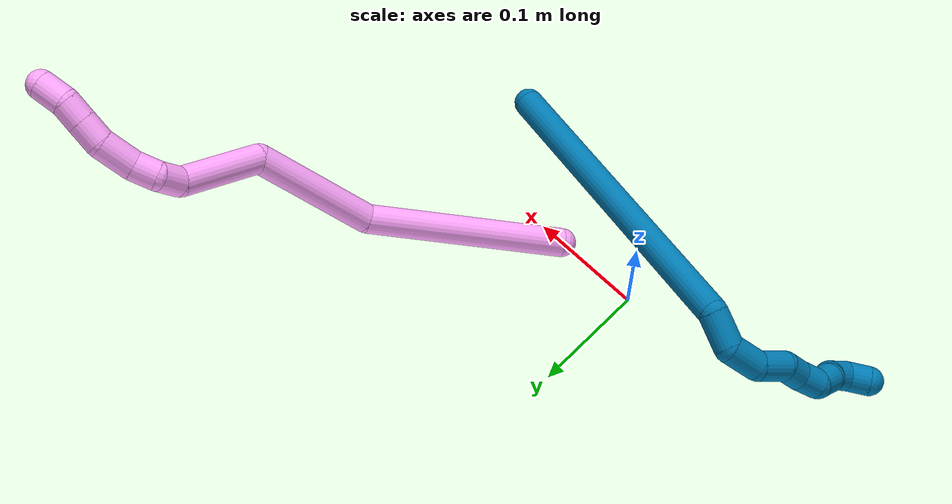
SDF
<sdf version="1.7">
 <world name="default">
  <model name="4">
   <static>0</static>
   <link name="4">
    <collision name="collision-cylinder-e_1_1_4">
     <pose>0.014929 -0.000879 0.08529 0.0103 0.173271 0.000895</pose>
     <geometry><cylinder><radius>0.0125</radius><length>0.173182</length></cylinder></geometry>
     <surface>
      <friction><ode><mu>1.16</mu><mu2>1.16</mu2><slip1>0</slip1><slip2>0</slip2></ode></friction>
      <contact><ode><kp>1e+06</kp><kd>1</kd><max_vel>0</max_vel><min_depth>0.001</min_depth></ode></contact>
     </surface>
    </collision>
    <visual name="visual-cylinder-e_1_1_4">
     <pose>0.014929 -0.000879 0.08529 0.0103 0.173271 0.000895</pose>
     <geometry><cylinder><radius>0.0125</radius><length>0.173182</length></cylinder></geometry>
     <material><ambient>1 0.65098 0.996078 1</ambient></material>
    </visual>
    <collision name="collision-cylinder-e_2_4_5">
     <pose>0.022246 0.012238 0.223022 -0.260782 -0.139322 0.018299</pose>
     <geometry><cylinder><radius>0.0125</radius><length>0.109617</length></cylinder></geometry>
     <surface>
      <friction><ode><mu>1.16</mu><mu2>1.16</mu2><slip1>0</slip1><slip2>0</slip2></ode></friction>
      <contact><ode><kp>1e+06</kp><kd>1</kd><max_vel>0</max_vel><min_depth>0.001</min_depth></ode></contact>
     </surface>
    </collision>
    <visual name="visual-cylinder-e_2_4_5">
     <pose>0.022246 0.012238 0.223022 -0.260782 -0.139322 0.018299</pose>
     <geometry><cylinder><radius>0.0125</radius><length>0.109617</length></cylinder></geometry>
     <material><ambient>1 0.65098 0.996078 1</ambient></material>
    </visual>
    <collision name="collision-cylinder-e_3_5_6">
     <pose>0.036466 0.037392 0.304811 -0.363369 0.607585 -0.115058</pose>
     <geometry><cylinder><radius>0.0125</radius><length>0.076482</length></cylinder></geometry>
     <surface>
      <friction><ode><mu>1.16</mu><mu2>1.16</mu2><slip1>0</slip1><slip2>0</slip2></ode></friction>
      <contact><ode><kp>1e+06</kp><kd>1</kd><max_vel>0</max_vel><min_depth>0.001</min_depth></ode></contact>
     </surface>
    </collision>
    <visual name="visual-cylinder-e_3_5_6">
     <pose>0.036466 0.037392 0.304811 -0.363369 0.607585 -0.115058</pose>
     <geometry><cylinder><radius>0.0125</radius><length>0.076482</length></cylinder></geometry>
     <material><ambient>1 0.65098 0.996078 1</ambient></material>
    </visual>
    <collision name="collision-cylinder-e_4_6_7">
     <pose>0.05995 0.053965 0.343731 -0.514719 0.149159 -0.039326</pose>
     <geometry><cylinder><radius>0.0125</radius><length>0.022243</length></cylinder></geometry>
     <surface>
      <friction><ode><mu>1.16</mu><mu2>1.16</mu2><slip1>0</slip1><slip2>0</slip2></ode></friction>
      <contact><ode><kp>1e+06</kp><kd>1</kd><max_vel>0</max_vel><min_depth>0.001</min_depth></ode></contact>
     </surface>
    </collision>
    <visual name="visual-cylinder-e_4_6_7">
     <pose>0.05995 0.053965 0.343731 -0.514719 0.149159 -0.039326</pose>
     <geometry><cylinder><radius>0.0125</radius><length>0.022243</length></cylinder></geometry>
     <material><ambient>1 0.65098 0.996078 1</ambient></material>
    </visual>
    <collision name="collision-cylinder-e_5_7_8">
     <pose>0.060174 0.058639 0.363685 0.071181 -0.136397 -0.004864</pose>
     <geometry><cylinder><radius>0.0125</radius><length>0.021011</length></cylinder></geometry>
     <surface>
      <friction><ode><mu>1.16</mu><mu2>1.16</mu2><slip1>0</slip1><slip2>0</slip2></ode></friction>
      <contact><ode><kp>1e+06</kp><kd>1</kd><max_vel>0</max_vel><min_depth>0.001</min_depth></ode></contact>
     </surface>
    </collision>
    <visual name="visual-cylinder-e_5_7_8">
     <pose>0.060174 0.058639 0.363685 0.071181 -0.136397 -0.004864</pose>
     <geometry><cylinder><radius>0.0125</radius><length>0.021011</length></cylinder></geometry>
     <material><ambient>1 0.65098 0.996078 1</ambient></material>
    </visual>
    <collision name="collision-cylinder-e_6_8_9">
     <pose>0.05455 0.060371 0.38887 -0.165487 -0.2726 0.022748</pose>
     <geometry><cylinder><radius>0.0125</radius><length>0.031166</length></cylinder></geometry>
     <surface>
      <friction><ode><mu>1.16</mu><mu2>1.16</mu2><slip1>0</slip1><slip2>0</slip2></ode></friction>
      <contact><ode><kp>1e+06</kp><kd>1</kd><max_vel>0</max_vel><min_depth>0.001</min_depth></ode></contact>
     </surface>
    </collision>
    <visual name="visual-cylinder-e_6_8_9">
     <pose>0.05455 0.060371 0.38887 -0.165487 -0.2726 0.022748</pose>
     <geometry><cylinder><radius>0.0125</radius><length>0.031166</length></cylinder></geometry>
     <material><ambient>1 0.65098 0.996078 1</ambient></material>
    </visual>
    <collision name="collision-cylinder-e_7_9_10">
     <pose>0.044461 0.063338 0.412811 -0.054105 -0.572116 0.015917</pose>
     <geometry><cylinder><radius>0.0125</radius><length>0.021771</length></cylinder></geometry>
     <surface>
      <friction><ode><mu>1.16</mu><mu2>1.16</mu2><slip1>0</slip1><slip2>0</slip2></ode></friction>
      <contact><ode><kp>1e+06</kp><kd>1</kd><max_vel>0</max_vel><min_depth>0.001</min_depth></ode></contact>
     </surface>
    </collision>
    <visual name="visual-cylinder-e_7_9_10">
     <pose>0.044461 0.063338 0.412811 -0.054105 -0.572116 0.015917</pose>
     <geometry><cylinder><radius>0.0125</radius><length>0.021771</length></cylinder></geometry>
     <material><ambient>1 0.65098 0.996078 1</ambient></material>
    </visual>
    <collision name="collision-cylinder-e_8_10_11">
     <pose>0.03305 0.064245 0.430365 -0.048943 -0.579759 0.014602</pose>
     <geometry><cylinder><radius>0.0125</radius><length>0.020144</length></cylinder></geometry>
     <surface>
      <friction><ode><mu>1.16</mu><mu2>1.16</mu2><slip1>0</slip1><slip2>0</slip2></ode></friction>
      <contact><ode><kp>1e+06</kp><kd>1</kd><max_vel>0</max_vel><min_depth>0.001</min_depth></ode></contact>
     </surface>
    </collision>
    <visual name="visual-cylinder-e_8_10_11">
     <pose>0.03305 0.064245 0.430365 -0.048943 -0.579759 0.014602</pose>
     <geometry><cylinder><radius>0.0125</radius><length>0.020144</length></cylinder></geometry>
     <material><ambient>1 0.65098 0.996078 1</ambient></material>
    </visual>
    <collision name="collision-cylinder-e_9_11_2">
     <pose>0.022718 0.061207 0.449438 0.313111 -0.405919 -0.064945</pose>
     <geometry><cylinder><radius>0.0125</radius><length>0.024384</length></cylinder></geometry>
     <surface>
      <friction><ode><mu>1.16</mu><mu2>1.16</mu2><slip1>0</slip1><slip2>0</slip2></ode></friction>
      <contact><ode><kp>1e+06</kp><kd>1</kd><max_vel>0</max_vel><min_depth>0.001</min_depth></ode></contact>
     </surface>
    </collision>
    <visual name="visual-cylinder-e_9_11_2">
     <pose>0.022718 0.061207 0.449438 0.313111 -0.405919 -0.064945</pose>
     <geometry><cylinder><radius>0.0125</radius><length>0.024384</length></cylinder></geometry>
     <material><ambient>1 0.65098 0.996078 1</ambient></material>
    </visual>
    <collision name="collision-sphere-2">
     <pose>0.017904 0.057757 0.460095 0 -0 0</pose>
     <geometry><sphere><radius>0.0125</radius></sphere></geometry>
     <surface>
      <friction><ode><mu>1.16</mu><mu2>1.16</mu2><slip1>0</slip1><slip2>0</slip2></ode></friction>
      <contact><ode><kp>1e+06</kp><kd>1</kd><max_vel>0</max_vel><min_depth>0.001</min_depth></ode></contact>
     </surface>
    </collision>
    <visual name="visual-sphere-2">
     <pose>0.017904 0.057757 0.460095 0 -0 0</pose>
     <geometry><sphere><radius>0.0125</radius></sphere></geometry>
     <material><ambient>1 0.65098 0.996078 1</ambient></material>
    </visual>
    <collision name="collision-sphere-11">
     <pose>0.027532 0.064658 0.438781 0 -0 0</pose>
     <geometry><sphere><radius>0.0125</radius></sphere></geometry>
     <surface>
      <friction><ode><mu>1.16</mu><mu2>1.16</mu2><slip1>0</slip1><slip2>0</slip2></ode></friction>
      <contact><ode><kp>1e+06</kp><kd>1</kd><max_vel>0</max_vel><min_depth>0.001</min_depth></ode></contact>
     </surface>
    </collision>
    <visual name="visual-sphere-11">
     <pose>0.027532 0.064658 0.438781 0 -0 0</pose>
     <geometry><sphere><radius>0.0125</radius></sphere></geometry>
     <material><ambient>1 0.65098 0.996078 1</ambient></material>
    </visual>
    <collision name="collision-sphere-10">
     <pose>0.038568 0.063833 0.421949 0 -0 0</pose>
     <geometry><sphere><radius>0.0125</radius></sphere></geometry>
     <surface>
      <friction><ode><mu>1.16</mu><mu2>1.16</mu2><slip1>0</slip1><slip2>0</slip2></ode></friction>
      <contact><ode><kp>1e+06</kp><kd>1</kd><max_vel>0</max_vel><min_depth>0.001</min_depth></ode></contact>
     </surface>
    </collision>
    <visual name="visual-sphere-10">
     <pose>0.038568 0.063833 0.421949 0 -0 0</pose>
     <geometry><sphere><radius>0.0125</radius></sphere></geometry>
     <material><ambient>1 0.65098 0.996078 1</ambient></material>
    </visual>
    <collision name="collision-sphere-9">
     <pose>0.050355 0.062843 0.403672 0 -0 0</pose>
     <geometry><sphere><radius>0.0125</radius></sphere></geometry>
     <surface>
      <friction><ode><mu>1.16</mu><mu2>1.16</mu2><slip1>0</slip1><slip2>0</slip2></ode></friction>
      <contact><ode><kp>1e+06</kp><kd>1</kd><max_vel>0</max_vel><min_depth>0.001</min_depth></ode></contact>
     </surface>
    </collision>
    <visual name="visual-sphere-9">
     <pose>0.050355 0.062843 0.403672 0 -0 0</pose>
     <geometry><sphere><radius>0.0125</radius></sphere></geometry>
     <material><ambient>1 0.65098 0.996078 1</ambient></material>
    </visual>
    <collision name="collision-sphere-4">
     <pose>0.029858 -0.001757 0.17058 0 -0 0</pose>
     <geometry><sphere><radius>0.0125</radius></sphere></geometry>
     <surface>
      <friction><ode><mu>1.16</mu><mu2>1.16</mu2><slip1>0</slip1><slip2>0</slip2></ode></friction>
      <contact><ode><kp>1e+06</kp><kd>1</kd><max_vel>0</max_vel><min_depth>0.001</min_depth></ode></contact>
     </surface>
    </collision>
    <visual name="visual-sphere-4">
     <pose>0.029858 -0.001757 0.17058 0 -0 0</pose>
     <geometry><sphere><radius>0.0125</radius></sphere></geometry>
     <material><ambient>1 0.65098 0.996078 1</ambient></material>
    </visual>
    <collision name="collision-sphere-1">
     <geometry><sphere><radius>0.0125</radius></sphere></geometry>
     <surface>
      <friction><ode><mu>1.16</mu><mu2>1.16</mu2><slip1>0</slip1><slip2>0</slip2></ode></friction>
      <contact><ode><kp>1e+06</kp><kd>1</kd><max_vel>0</max_vel><min_depth>0.001</min_depth></ode></contact>
     </surface>
    </collision>
    <visual name="visual-sphere-1">
     <geometry><sphere><radius>0.0125</radius></sphere></geometry>
     <material><ambient>1 0.65098 0.996078 1</ambient></material>
    </visual>
    <collision name="collision-sphere-8">
     <pose>0.058746 0.057899 0.374067 0 -0 0</pose>
     <geometry><sphere><radius>0.0125</radius></sphere></geometry>
     <surface>
      <friction><ode><mu>1.16</mu><mu2>1.16</mu2><slip1>0</slip1><slip2>0</slip2></ode></friction>
      <contact><ode><kp>1e+06</kp><kd>1</kd><max_vel>0</max_vel><min_depth>0.001</min_depth></ode></contact>
     </surface>
    </collision>
    <visual name="visual-sphere-8">
     <pose>0.058746 0.057899 0.374067 0 -0 0</pose>
     <geometry><sphere><radius>0.0125</radius></sphere></geometry>
     <material><ambient>1 0.65098 0.996078 1</ambient></material>
    </visual>
    <collision name="collision-sphere-5">
     <pose>0.014635 0.026232 0.275464 0 -0 0</pose>
     <geometry><sphere><radius>0.0125</radius></sphere></geometry>
     <surface>
      <friction><ode><mu>1.16</mu><mu2>1.16</mu2><slip1>0</slip1><slip2>0</slip2></ode></friction>
      <contact><ode><kp>1e+06</kp><kd>1</kd><max_vel>0</max_vel><min_depth>0.001</min_depth></ode></contact>
     </surface>
    </collision>
    <visual name="visual-sphere-5">
     <pose>0.014635 0.026232 0.275464 0 -0 0</pose>
     <geometry><sphere><radius>0.0125</radius></sphere></geometry>
     <material><ambient>1 0.65098 0.996078 1</ambient></material>
    </visual>
    <collision name="collision-sphere-6">
     <pose>0.058297 0.048551 0.334158 0 -0 0</pose>
     <geometry><sphere><radius>0.0125</radius></sphere></geometry>
     <surface>
      <friction><ode><mu>1.16</mu><mu2>1.16</mu2><slip1>0</slip1><slip2>0</slip2></ode></friction>
      <contact><ode><kp>1e+06</kp><kd>1</kd><max_vel>0</max_vel><min_depth>0.001</min_depth></ode></contact>
     </surface>
    </collision>
    <visual name="visual-sphere-6">
     <pose>0.058297 0.048551 0.334158 0 -0 0</pose>
     <geometry><sphere><radius>0.0125</radius></sphere></geometry>
     <material><ambient>1 0.65098 0.996078 1</ambient></material>
    </visual>
    <collision name="collision-sphere-7">
     <pose>0.061603 0.059379 0.353304 0 -0 0</pose>
     <geometry><sphere><radius>0.0125</radius></sphere></geometry>
     <surface>
      <friction><ode><mu>1.16</mu><mu2>1.16</mu2><slip1>0</slip1><slip2>0</slip2></ode></friction>
      <contact><ode><kp>1e+06</kp><kd>1</kd><max_vel>0</max_vel><min_depth>0.001</min_depth></ode></contact>
     </surface>
    </collision>
    <visual name="visual-sphere-7">
     <pose>0.061603 0.059379 0.353304 0 -0 0</pose>
     <geometry><sphere><radius>0.0125</radius></sphere></geometry>
     <material><ambient>1 0.65098 0.996078 1</ambient></material>
    </visual>
    <inertial>
     <pose>0.028597 0.025057 0.237105 0 -0 0</pose>
     <mass>0.5</mass>
     <inertia>
      <ixx>0.00059</ixx>
      <ixy>0</ixy>
      <ixz>0</ixz>
      <iyy>0.000603</iyy>
      <iyz>0</iyz>
      <izz>-8.1e-05</izz>
     </inertia>
    </inertial>
   </link>
   <pose>0.074911 0.004537 0.011498 1.23255 0.184896 2.10765</pose>
  </model>
  <model name="9">
   <static>0</static>
   <link name="9">
    <collision name="collision-cylinder-e_1_1_4">
     <pose>-0.137055 0.044749 -0.005959 -1.70319 -1.2526 1.38102</pose>
     <geometry><cylinder><radius>0.0125</radius><length>0.288597</length></cylinder></geometry>
     <surface>
      <friction><ode><mu>1.16</mu><mu2>1.16</mu2><slip1>0</slip1><slip2>0</slip2></ode></friction>
      <contact><ode><kp>1e+06</kp><kd>1</kd><max_vel>0</max_vel><min_depth>0.001</min_depth></ode></contact>
     </surface>
    </collision>
    <visual name="visual-cylinder-e_1_1_4">
     <pose>-0.137055 0.044749 -0.005959 -1.70319 -1.2526 1.38102</pose>
     <geometry><cylinder><radius>0.0125</radius><length>0.288597</length></cylinder></geometry>
     <material><ambient>0 0.490196 0.709804 1</ambient></material>
    </visual>
    <collision name="collision-cylinder-e_2_4_5">
     <pose>-0.284097 0.097913 -0.020232 -2.35019 -0.701209 1.43819</pose>
     <geometry><cylinder><radius>0.0125</radius><length>0.030963</length></cylinder></geometry>
     <surface>
      <friction><ode><mu>1.16</mu><mu2>1.16</mu2><slip1>0</slip1><slip2>0</slip2></ode></friction>
      <contact><ode><kp>1e+06</kp><kd>1</kd><max_vel>0</max_vel><min_depth>0.001</min_depth></ode></contact>
     </surface>
    </collision>
    <visual name="visual-cylinder-e_2_4_5">
     <pose>-0.284097 0.097913 -0.020232 -2.35019 -0.701209 1.43819</pose>
     <geometry><cylinder><radius>0.0125</radius><length>0.030963</length></cylinder></geometry>
     <material><ambient>0 0.490196 0.709804 1</ambient></material>
    </visual>
    <collision name="collision-cylinder-e_3_5_6">
     <pose>-0.301227 0.105551 -0.041575 3.08206 -0.500706 -2.90976</pose>
     <geometry><cylinder><radius>0.0125</radius><length>0.029756</length></cylinder></geometry>
     <surface>
      <friction><ode><mu>1.16</mu><mu2>1.16</mu2><slip1>0</slip1><slip2>0</slip2></ode></friction>
      <contact><ode><kp>1e+06</kp><kd>1</kd><max_vel>0</max_vel><min_depth>0.001</min_depth></ode></contact>
     </surface>
    </collision>
    <visual name="visual-cylinder-e_3_5_6">
     <pose>-0.301227 0.105551 -0.041575 3.08206 -0.500706 -2.90976</pose>
     <geometry><cylinder><radius>0.0125</radius><length>0.029756</length></cylinder></geometry>
     <material><ambient>0 0.490196 0.709804 1</ambient></material>
    </visual>
    <collision name="collision-cylinder-e_4_6_7">
     <pose>-0.31151 0.097801 -0.066938 2.62707 -0.218146 -0.788846</pose>
     <geometry><cylinder><radius>0.0125</radius><length>0.029026</length></cylinder></geometry>
     <surface>
      <friction><ode><mu>1.16</mu><mu2>1.16</mu2><slip1>0</slip1><slip2>0</slip2></ode></friction>
      <contact><ode><kp>1e+06</kp><kd>1</kd><max_vel>0</max_vel><min_depth>0.001</min_depth></ode></contact>
     </surface>
    </collision>
    <visual name="visual-cylinder-e_4_6_7">
     <pose>-0.31151 0.097801 -0.066938 2.62707 -0.218146 -0.788846</pose>
     <geometry><cylinder><radius>0.0125</radius><length>0.029026</length></cylinder></geometry>
     <material><ambient>0 0.490196 0.709804 1</ambient></material>
    </visual>
    <collision name="collision-cylinder-e_5_7_8">
     <pose>-0.316081 0.089942 -0.089279 3.05328 -0.141386 -2.02581</pose>
     <geometry><cylinder><radius>0.0125</radius><length>0.020295</length></cylinder></geometry>
     <surface>
      <friction><ode><mu>1.16</mu><mu2>1.16</mu2><slip1>0</slip1><slip2>0</slip2></ode></friction>
      <contact><ode><kp>1e+06</kp><kd>1</kd><max_vel>0</max_vel><min_depth>0.001</min_depth></ode></contact>
     </surface>
    </collision>
    <visual name="visual-cylinder-e_5_7_8">
     <pose>-0.316081 0.089942 -0.089279 3.05328 -0.141386 -2.02581</pose>
     <geometry><cylinder><radius>0.0125</radius><length>0.020295</length></cylinder></geometry>
     <material><ambient>0 0.490196 0.709804 1</ambient></material>
    </visual>
    <collision name="collision-cylinder-e_6_8_9">
     <pose>-0.321762 0.08723 -0.108668 2.94933 -0.418488 -2.2891</pose>
     <geometry><cylinder><radius>0.0125</radius><length>0.020923</length></cylinder></geometry>
     <surface>
      <friction><ode><mu>1.16</mu><mu2>1.16</mu2><slip1>0</slip1><slip2>0</slip2></ode></friction>
      <contact><ode><kp>1e+06</kp><kd>1</kd><max_vel>0</max_vel><min_depth>0.001</min_depth></ode></contact>
     </surface>
    </collision>
    <visual name="visual-cylinder-e_6_8_9">
     <pose>-0.321762 0.08723 -0.108668 2.94933 -0.418488 -2.2891</pose>
     <geometry><cylinder><radius>0.0125</radius><length>0.020923</length></cylinder></geometry>
     <material><ambient>0 0.490196 0.709804 1</ambient></material>
    </visual>
    <collision name="collision-cylinder-e_7_9_10">
     <pose>-0.324602 0.079506 -0.126005 2.50362 0.141593 0.423021</pose>
     <geometry><cylinder><radius>0.0125</radius><length>0.020004</length></cylinder></geometry>
     <surface>
      <friction><ode><mu>1.16</mu><mu2>1.16</mu2><slip1>0</slip1><slip2>0</slip2></ode></friction>
      <contact><ode><kp>1e+06</kp><kd>1</kd><max_vel>0</max_vel><min_depth>0.001</min_depth></ode></contact>
     </surface>
    </collision>
    <visual name="visual-cylinder-e_7_9_10">
     <pose>-0.324602 0.079506 -0.126005 2.50362 0.141593 0.423021</pose>
     <geometry><cylinder><radius>0.0125</radius><length>0.020004</length></cylinder></geometry>
     <material><ambient>0 0.490196 0.709804 1</ambient></material>
    </visual>
    <collision name="collision-cylinder-e_8_10_11">
     <pose>-0.31782 0.071468 -0.142151 2.88595 0.565221 2.30824</pose>
     <geometry><cylinder><radius>0.0125</radius><length>0.020052</length></cylinder></geometry>
     <surface>
      <friction><ode><mu>1.16</mu><mu2>1.16</mu2><slip1>0</slip1><slip2>0</slip2></ode></friction>
      <contact><ode><kp>1e+06</kp><kd>1</kd><max_vel>0</max_vel><min_depth>0.001</min_depth></ode></contact>
     </surface>
    </collision>
    <visual name="visual-cylinder-e_8_10_11">
     <pose>-0.31782 0.071468 -0.142151 2.88595 0.565221 2.30824</pose>
     <geometry><cylinder><radius>0.0125</radius><length>0.020052</length></cylinder></geometry>
     <material><ambient>0 0.490196 0.709804 1</ambient></material>
    </visual>
    <collision name="collision-cylinder-e_9_11_12">
     <pose>-0.313714 0.064993 -0.159295 2.69074 -0.12636 -0.538357</pose>
     <geometry><cylinder><radius>0.0125</radius><length>0.020052</length></cylinder></geometry>
     <surface>
      <friction><ode><mu>1.16</mu><mu2>1.16</mu2><slip1>0</slip1><slip2>0</slip2></ode></friction>
      <contact><ode><kp>1e+06</kp><kd>1</kd><max_vel>0</max_vel><min_depth>0.001</min_depth></ode></contact>
     </surface>
    </collision>
    <visual name="visual-cylinder-e_9_11_12">
     <pose>-0.313714 0.064993 -0.159295 2.69074 -0.12636 -0.538357</pose>
     <geometry><cylinder><radius>0.0125</radius><length>0.020052</length></cylinder></geometry>
     <material><ambient>0 0.490196 0.709804 1</ambient></material>
    </visual>
    <collision name="collision-cylinder-e_10_12_2">
     <pose>-0.322447 0.057077 -0.174141 2.59545 -0.825241 -2.00327</pose>
     <geometry><cylinder><radius>0.0125</radius><length>0.020333</length></cylinder></geometry>
     <surface>
      <friction><ode><mu>1.16</mu><mu2>1.16</mu2><slip1>0</slip1><slip2>0</slip2></ode></friction>
      <contact><ode><kp>1e+06</kp><kd>1</kd><max_vel>0</max_vel><min_depth>0.001</min_depth></ode></contact>
     </surface>
    </collision>
    <visual name="visual-cylinder-e_10_12_2">
     <pose>-0.322447 0.057077 -0.174141 2.59545 -0.825241 -2.00327</pose>
     <geometry><cylinder><radius>0.0125</radius><length>0.020333</length></cylinder></geometry>
     <material><ambient>0 0.490196 0.709804 1</ambient></material>
    </visual>
    <collision name="collision-sphere-2">
     <pose>-0.329916 0.053495 -0.180034 0 -0 0</pose>
     <geometry><sphere><radius>0.0125</radius></sphere></geometry>
     <surface>
      <friction><ode><mu>1.16</mu><mu2>1.16</mu2><slip1>0</slip1><slip2>0</slip2></ode></friction>
      <contact><ode><kp>1e+06</kp><kd>1</kd><max_vel>0</max_vel><min_depth>0.001</min_depth></ode></contact>
     </surface>
    </collision>
    <visual name="visual-sphere-2">
     <pose>-0.329916 0.053495 -0.180034 0 -0 0</pose>
     <geometry><sphere><radius>0.0125</radius></sphere></geometry>
     <material><ambient>0 0.490196 0.709804 1</ambient></material>
    </visual>
    <collision name="collision-sphere-12">
     <pose>-0.314978 0.060659 -0.168247 0 -0 0</pose>
     <geometry><sphere><radius>0.0125</radius></sphere></geometry>
     <surface>
      <friction><ode><mu>1.16</mu><mu2>1.16</mu2><slip1>0</slip1><slip2>0</slip2></ode></friction>
      <contact><ode><kp>1e+06</kp><kd>1</kd><max_vel>0</max_vel><min_depth>0.001</min_depth></ode></contact>
     </surface>
    </collision>
    <visual name="visual-sphere-12">
     <pose>-0.314978 0.060659 -0.168247 0 -0 0</pose>
     <geometry><sphere><radius>0.0125</radius></sphere></geometry>
     <material><ambient>0 0.490196 0.709804 1</ambient></material>
    </visual>
    <collision name="collision-sphere-11">
     <pose>-0.31245 0.069327 -0.150342 0 -0 0</pose>
     <geometry><sphere><radius>0.0125</radius></sphere></geometry>
     <surface>
      <friction><ode><mu>1.16</mu><mu2>1.16</mu2><slip1>0</slip1><slip2>0</slip2></ode></friction>
      <contact><ode><kp>1e+06</kp><kd>1</kd><max_vel>0</max_vel><min_depth>0.001</min_depth></ode></contact>
     </surface>
    </collision>
    <visual name="visual-sphere-11">
     <pose>-0.31245 0.069327 -0.150342 0 -0 0</pose>
     <geometry><sphere><radius>0.0125</radius></sphere></geometry>
     <material><ambient>0 0.490196 0.709804 1</ambient></material>
    </visual>
    <collision name="collision-sphere-10">
     <pose>-0.32319 0.073609 -0.133959 0 -0 0</pose>
     <geometry><sphere><radius>0.0125</radius></sphere></geometry>
     <surface>
      <friction><ode><mu>1.16</mu><mu2>1.16</mu2><slip1>0</slip1><slip2>0</slip2></ode></friction>
      <contact><ode><kp>1e+06</kp><kd>1</kd><max_vel>0</max_vel><min_depth>0.001</min_depth></ode></contact>
     </surface>
    </collision>
    <visual name="visual-sphere-10">
     <pose>-0.32319 0.073609 -0.133959 0 -0 0</pose>
     <geometry><sphere><radius>0.0125</radius></sphere></geometry>
     <material><ambient>0 0.490196 0.709804 1</ambient></material>
    </visual>
    <collision name="collision-sphere-9">
     <pose>-0.326013 0.085403 -0.118051 0 -0 0</pose>
     <geometry><sphere><radius>0.0125</radius></sphere></geometry>
     <surface>
      <friction><ode><mu>1.16</mu><mu2>1.16</mu2><slip1>0</slip1><slip2>0</slip2></ode></friction>
      <contact><ode><kp>1e+06</kp><kd>1</kd><max_vel>0</max_vel><min_depth>0.001</min_depth></ode></contact>
     </surface>
    </collision>
    <visual name="visual-sphere-9">
     <pose>-0.326013 0.085403 -0.118051 0 -0 0</pose>
     <geometry><sphere><radius>0.0125</radius></sphere></geometry>
     <material><ambient>0 0.490196 0.709804 1</ambient></material>
    </visual>
    <collision name="collision-sphere-4">
     <pose>-0.274109 0.089498 -0.011918 0 -0 0</pose>
     <geometry><sphere><radius>0.0125</radius></sphere></geometry>
     <surface>
      <friction><ode><mu>1.16</mu><mu2>1.16</mu2><slip1>0</slip1><slip2>0</slip2></ode></friction>
      <contact><ode><kp>1e+06</kp><kd>1</kd><max_vel>0</max_vel><min_depth>0.001</min_depth></ode></contact>
     </surface>
    </collision>
    <visual name="visual-sphere-4">
     <pose>-0.274109 0.089498 -0.011918 0 -0 0</pose>
     <geometry><sphere><radius>0.0125</radius></sphere></geometry>
     <material><ambient>0 0.490196 0.709804 1</ambient></material>
    </visual>
    <collision name="collision-sphere-1">
     <geometry><sphere><radius>0.0125</radius></sphere></geometry>
     <surface>
      <friction><ode><mu>1.16</mu><mu2>1.16</mu2><slip1>0</slip1><slip2>0</slip2></ode></friction>
      <contact><ode><kp>1e+06</kp><kd>1</kd><max_vel>0</max_vel><min_depth>0.001</min_depth></ode></contact>
     </surface>
    </collision>
    <visual name="visual-sphere-1">
     <geometry><sphere><radius>0.0125</radius></sphere></geometry>
     <material><ambient>0 0.490196 0.709804 1</ambient></material>
    </visual>
    <collision name="collision-sphere-8">
     <pose>-0.317511 0.089056 -0.099286 0 -0 0</pose>
     <geometry><sphere><radius>0.0125</radius></sphere></geometry>
     <surface>
      <friction><ode><mu>1.16</mu><mu2>1.16</mu2><slip1>0</slip1><slip2>0</slip2></ode></friction>
      <contact><ode><kp>1e+06</kp><kd>1</kd><max_vel>0</max_vel><min_depth>0.001</min_depth></ode></contact>
     </surface>
    </collision>
    <visual name="visual-sphere-8">
     <pose>-0.317511 0.089056 -0.099286 0 -0 0</pose>
     <geometry><sphere><radius>0.0125</radius></sphere></geometry>
     <material><ambient>0 0.490196 0.709804 1</ambient></material>
    </visual>
    <collision name="collision-sphere-5">
     <pose>-0.294085 0.106327 -0.028546 0 -0 0</pose>
     <geometry><sphere><radius>0.0125</radius></sphere></geometry>
     <surface>
      <friction><ode><mu>1.16</mu><mu2>1.16</mu2><slip1>0</slip1><slip2>0</slip2></ode></friction>
      <contact><ode><kp>1e+06</kp><kd>1</kd><max_vel>0</max_vel><min_depth>0.001</min_depth></ode></contact>
     </surface>
    </collision>
    <visual name="visual-sphere-5">
     <pose>-0.294085 0.106327 -0.028546 0 -0 0</pose>
     <geometry><sphere><radius>0.0125</radius></sphere></geometry>
     <material><ambient>0 0.490196 0.709804 1</ambient></material>
    </visual>
    <collision name="collision-sphere-6">
     <pose>-0.308369 0.104774 -0.054603 0 -0 0</pose>
     <geometry><sphere><radius>0.0125</radius></sphere></geometry>
     <surface>
      <friction><ode><mu>1.16</mu><mu2>1.16</mu2><slip1>0</slip1><slip2>0</slip2></ode></friction>
      <contact><ode><kp>1e+06</kp><kd>1</kd><max_vel>0</max_vel><min_depth>0.001</min_depth></ode></contact>
     </surface>
    </collision>
    <visual name="visual-sphere-6">
     <pose>-0.308369 0.104774 -0.054603 0 -0 0</pose>
     <geometry><sphere><radius>0.0125</radius></sphere></geometry>
     <material><ambient>0 0.490196 0.709804 1</ambient></material>
    </visual>
    <collision name="collision-sphere-7">
     <pose>-0.314651 0.090828 -0.079272 0 -0 0</pose>
     <geometry><sphere><radius>0.0125</radius></sphere></geometry>
     <surface>
      <friction><ode><mu>1.16</mu><mu2>1.16</mu2><slip1>0</slip1><slip2>0</slip2></ode></friction>
      <contact><ode><kp>1e+06</kp><kd>1</kd><max_vel>0</max_vel><min_depth>0.001</min_depth></ode></contact>
     </surface>
    </collision>
    <visual name="visual-sphere-7">
     <pose>-0.314651 0.090828 -0.079272 0 -0 0</pose>
     <geometry><sphere><radius>0.0125</radius></sphere></geometry>
     <material><ambient>0 0.490196 0.709804 1</ambient></material>
    </visual>
    <inertial>
     <pose>-0.210431 0.062127 -0.043436 0 -0 0</pose>
     <mass>0.5</mass>
     <inertia>
      <ixx>0.000709</ixx>
      <ixy>0</ixy>
      <ixz>0</ixz>
      <iyy>0.002437</iyy>
      <iyz>0</iyz>
      <izz>0.001283</izz>
     </inertia>
    </inertial>
   </link>
   <pose>0.180904 -0.064843 0.03744 -0.295923 0.452431 0.040902</pose>
  </model>
 </world>
</sdf>
